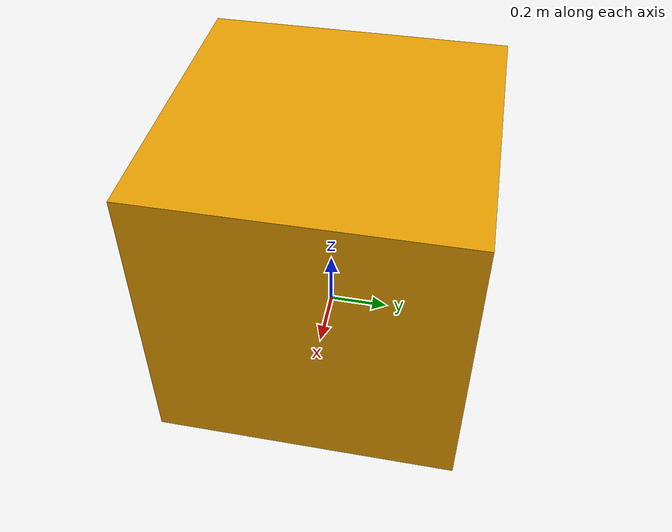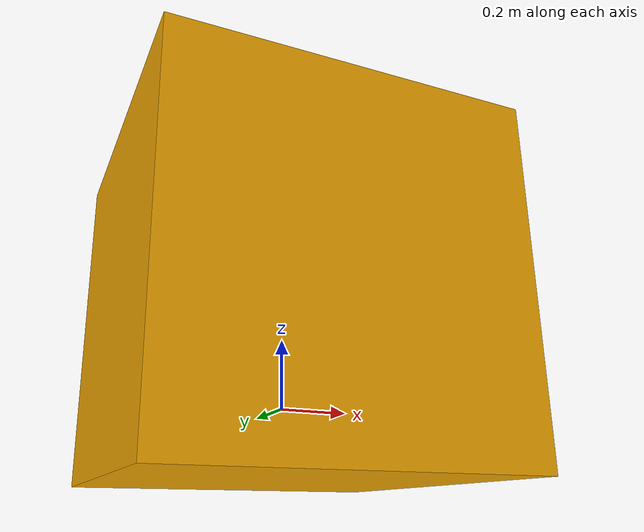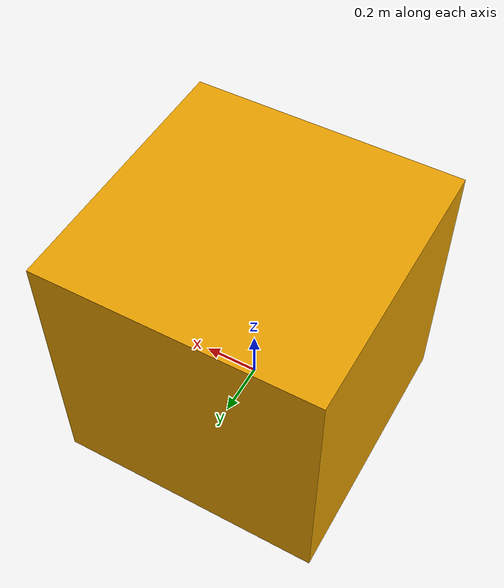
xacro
<?xml version="1.0" ?>
<robot name="box" xmlns:xacro="http://www.ros.org/wiki/xacro">
  <link name="box_link">
    <inertial>
      <mass value="50"/>
      <origin rpy="0  0  0" xyz="0  0  0"/>
      <inertia ixx="8.3333" ixy="0" ixz="0" iyy="8.3333" iyz="0" izz="8.3333"/>
    </inertial>
    <collision>
      <origin rpy="0       0       0" xyz="0  0 0.3"/>
      <geometry>
        <box size="1 1 1"/>
      </geometry>
    </collision>
    <visual>
      <origin rpy="0       0       0" xyz="0  0  0.3"/>
      <geometry>
        <box size="1 1 1"/>
      </geometry>
    </visual>
  </link>

  <gazebo reference="box_link">
    <material>test/aruco50</material>
  </gazebo>
</robot>
